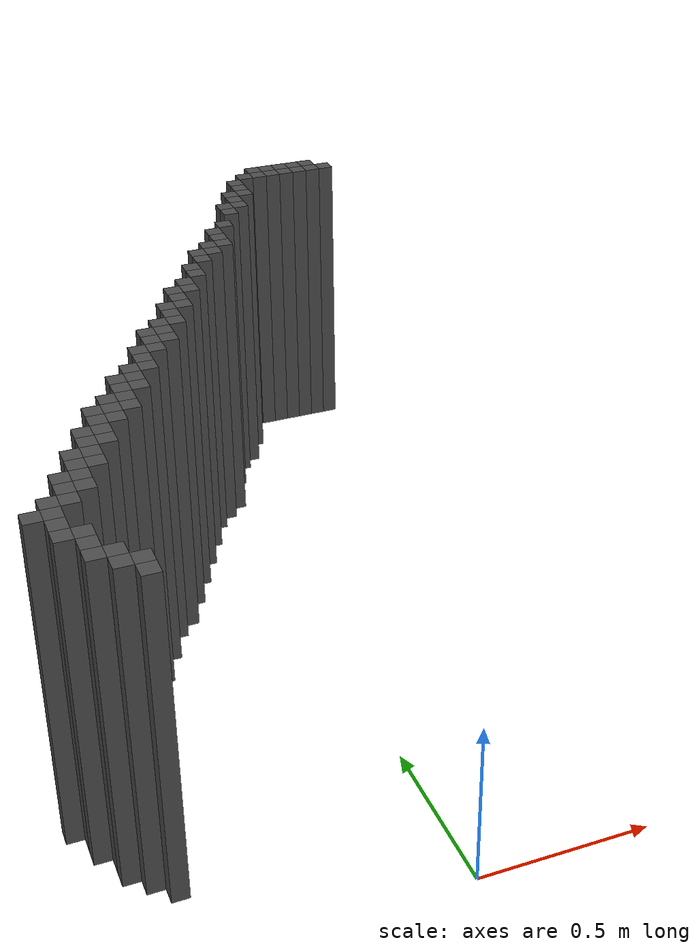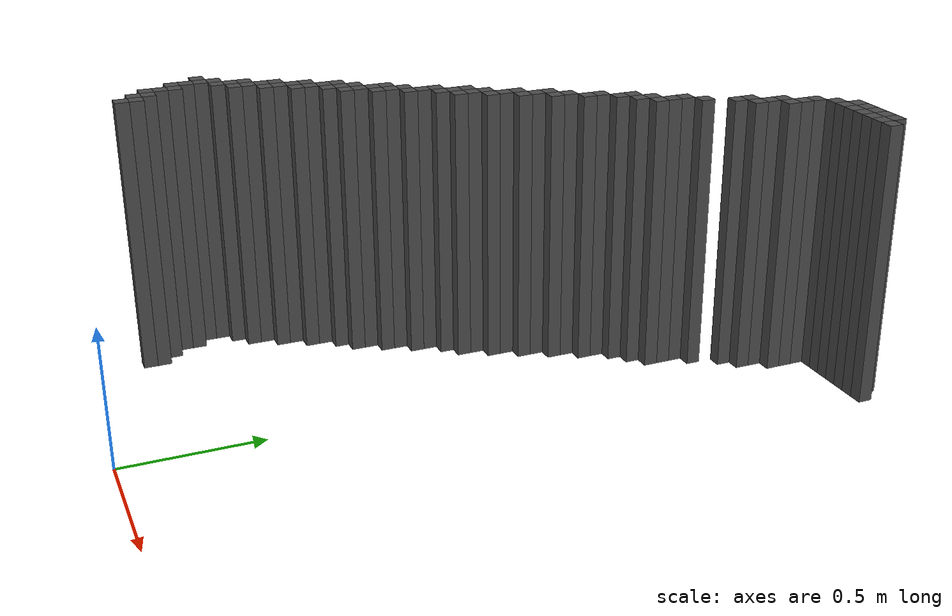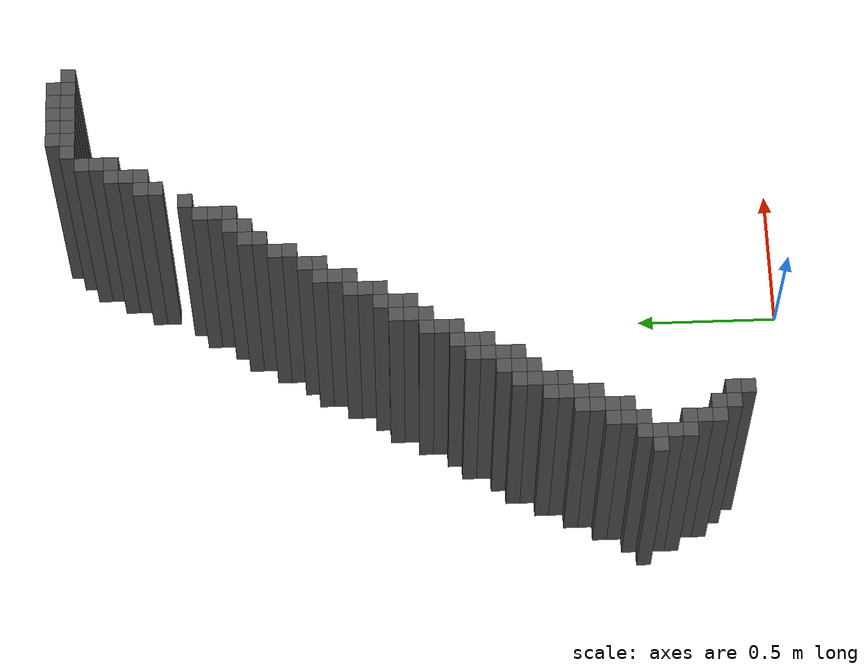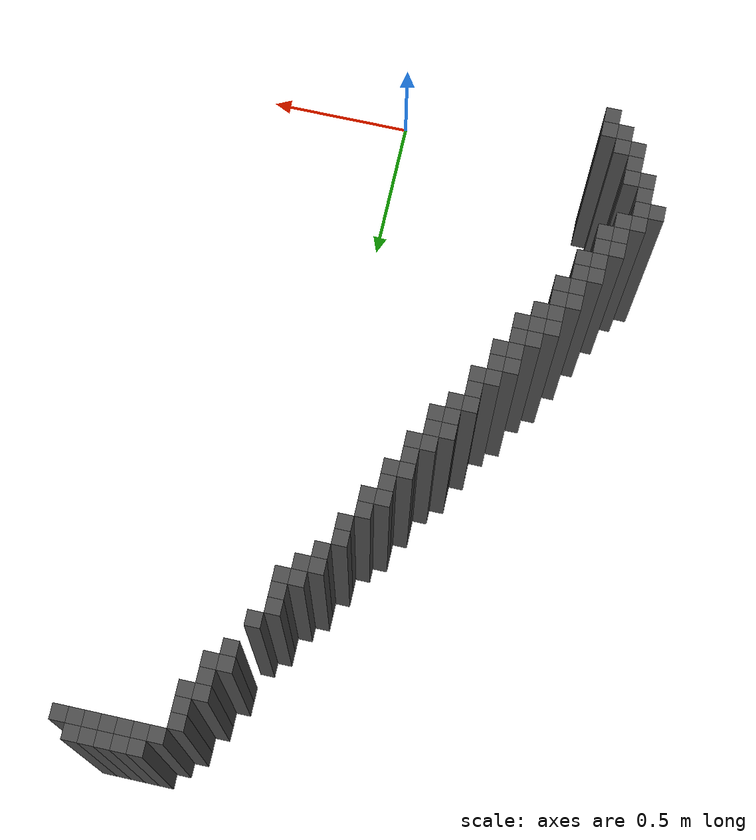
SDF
<sdf version="1.9">
 <world name="house_cleaner">
  <model name="wall_16_29">
   <static>true</static>
   <pose>0.2800 2.5400 0.5 0 0 0</pose>
   <link name="wall_link">
    <collision name="collision"><geometry><box><size>0.05 0.05 1.0</size></box></geometry></collision>
    <visual name="visual">
     <geometry><box><size>0.05 0.05 1.0</size></box></geometry>
     <material><ambient>0.3 0.3 0.3 1</ambient><diffuse>0.3 0.3 0.3 1</diffuse></material>
    </visual>
   </link>
  </model>
  <model name="wall_16_30">
   <static>true</static>
   <pose>0.3300 2.5400 0.5 0 0 0</pose>
   <link name="wall_link">
    <collision name="collision"><geometry><box><size>0.05 0.05 1.0</size></box></geometry></collision>
    <visual name="visual">
     <geometry><box><size>0.05 0.05 1.0</size></box></geometry>
     <material><ambient>0.3 0.3 0.3 1</ambient><diffuse>0.3 0.3 0.3 1</diffuse></material>
    </visual>
   </link>
  </model>
  <model name="wall_16_31">
   <static>true</static>
   <pose>0.3800 2.5400 0.5 0 0 0</pose>
   <link name="wall_link">
    <collision name="collision"><geometry><box><size>0.05 0.05 1.0</size></box></geometry></collision>
    <visual name="visual">
     <geometry><box><size>0.05 0.05 1.0</size></box></geometry>
     <material><ambient>0.3 0.3 0.3 1</ambient><diffuse>0.3 0.3 0.3 1</diffuse></material>
    </visual>
   </link>
  </model>
  <model name="wall_16_32">
   <static>true</static>
   <pose>0.4300 2.5400 0.5 0 0 0</pose>
   <link name="wall_link">
    <collision name="collision"><geometry><box><size>0.05 0.05 1.0</size></box></geometry></collision>
    <visual name="visual">
     <geometry><box><size>0.05 0.05 1.0</size></box></geometry>
     <material><ambient>0.3 0.3 0.3 1</ambient><diffuse>0.3 0.3 0.3 1</diffuse></material>
    </visual>
   </link>
  </model>
  <model name="wall_16_33">
   <static>true</static>
   <pose>0.4800 2.5400 0.5 0 0 0</pose>
   <link name="wall_link">
    <collision name="collision"><geometry><box><size>0.05 0.05 1.0</size></box></geometry></collision>
    <visual name="visual">
     <geometry><box><size>0.05 0.05 1.0</size></box></geometry>
     <material><ambient>0.3 0.3 0.3 1</ambient><diffuse>0.3 0.3 0.3 1</diffuse></material>
    </visual>
   </link>
  </model>
  <model name="wall_17_28">
   <static>true</static>
   <pose>0.2300 2.4900 0.5 0 0 0</pose>
   <link name="wall_link">
    <collision name="collision"><geometry><box><size>0.05 0.05 1.0</size></box></geometry></collision>
    <visual name="visual">
     <geometry><box><size>0.05 0.05 1.0</size></box></geometry>
     <material><ambient>0.3 0.3 0.3 1</ambient><diffuse>0.3 0.3 0.3 1</diffuse></material>
    </visual>
   </link>
  </model>
  <model name="wall_17_29">
   <static>true</static>
   <pose>0.2800 2.4900 0.5 0 0 0</pose>
   <link name="wall_link">
    <collision name="collision"><geometry><box><size>0.05 0.05 1.0</size></box></geometry></collision>
    <visual name="visual">
     <geometry><box><size>0.05 0.05 1.0</size></box></geometry>
     <material><ambient>0.3 0.3 0.3 1</ambient><diffuse>0.3 0.3 0.3 1</diffuse></material>
    </visual>
   </link>
  </model>
  <model name="wall_17_30">
   <static>true</static>
   <pose>0.3300 2.4900 0.5 0 0 0</pose>
   <link name="wall_link">
    <collision name="collision"><geometry><box><size>0.05 0.05 1.0</size></box></geometry></collision>
    <visual name="visual">
     <geometry><box><size>0.05 0.05 1.0</size></box></geometry>
     <material><ambient>0.3 0.3 0.3 1</ambient><diffuse>0.3 0.3 0.3 1</diffuse></material>
    </visual>
   </link>
  </model>
  <model name="wall_17_31">
   <static>true</static>
   <pose>0.3800 2.4900 0.5 0 0 0</pose>
   <link name="wall_link">
    <collision name="collision"><geometry><box><size>0.05 0.05 1.0</size></box></geometry></collision>
    <visual name="visual">
     <geometry><box><size>0.05 0.05 1.0</size></box></geometry>
     <material><ambient>0.3 0.3 0.3 1</ambient><diffuse>0.3 0.3 0.3 1</diffuse></material>
    </visual>
   </link>
  </model>
  <model name="wall_17_32">
   <static>true</static>
   <pose>0.4300 2.4900 0.5 0 0 0</pose>
   <link name="wall_link">
    <collision name="collision"><geometry><box><size>0.05 0.05 1.0</size></box></geometry></collision>
    <visual name="visual">
     <geometry><box><size>0.05 0.05 1.0</size></box></geometry>
     <material><ambient>0.3 0.3 0.3 1</ambient><diffuse>0.3 0.3 0.3 1</diffuse></material>
    </visual>
   </link>
  </model>
  <model name="wall_17_33">
   <static>true</static>
   <pose>0.4800 2.4900 0.5 0 0 0</pose>
   <link name="wall_link">
    <collision name="collision"><geometry><box><size>0.05 0.05 1.0</size></box></geometry></collision>
    <visual name="visual">
     <geometry><box><size>0.05 0.05 1.0</size></box></geometry>
     <material><ambient>0.3 0.3 0.3 1</ambient><diffuse>0.3 0.3 0.3 1</diffuse></material>
    </visual>
   </link>
  </model>
  <model name="wall_17_34">
   <static>true</static>
   <pose>0.5300 2.4900 0.5 0 0 0</pose>
   <link name="wall_link">
    <collision name="collision"><geometry><box><size>0.05 0.05 1.0</size></box></geometry></collision>
    <visual name="visual">
     <geometry><box><size>0.05 0.05 1.0</size></box></geometry>
     <material><ambient>0.3 0.3 0.3 1</ambient><diffuse>0.3 0.3 0.3 1</diffuse></material>
    </visual>
   </link>
  </model>
  <model name="wall_18_27">
   <static>true</static>
   <pose>0.1800 2.4400 0.5 0 0 0</pose>
   <link name="wall_link">
    <collision name="collision"><geometry><box><size>0.05 0.05 1.0</size></box></geometry></collision>
    <visual name="visual">
     <geometry><box><size>0.05 0.05 1.0</size></box></geometry>
     <material><ambient>0.3 0.3 0.3 1</ambient><diffuse>0.3 0.3 0.3 1</diffuse></material>
    </visual>
   </link>
  </model>
  <model name="wall_19_27">
   <static>true</static>
   <pose>0.1800 2.3900 0.5 0 0 0</pose>
   <link name="wall_link">
    <collision name="collision"><geometry><box><size>0.05 0.05 1.0</size></box></geometry></collision>
    <visual name="visual">
     <geometry><box><size>0.05 0.05 1.0</size></box></geometry>
     <material><ambient>0.3 0.3 0.3 1</ambient><diffuse>0.3 0.3 0.3 1</diffuse></material>
    </visual>
   </link>
  </model>
  <model name="wall_20_26">
   <static>true</static>
   <pose>0.1300 2.3400 0.5 0 0 0</pose>
   <link name="wall_link">
    <collision name="collision"><geometry><box><size>0.05 0.05 1.0</size></box></geometry></collision>
    <visual name="visual">
     <geometry><box><size>0.05 0.05 1.0</size></box></geometry>
     <material><ambient>0.3 0.3 0.3 1</ambient><diffuse>0.3 0.3 0.3 1</diffuse></material>
    </visual>
   </link>
  </model>
  <model name="wall_20_27">
   <static>true</static>
   <pose>0.1800 2.3400 0.5 0 0 0</pose>
   <link name="wall_link">
    <collision name="collision"><geometry><box><size>0.05 0.05 1.0</size></box></geometry></collision>
    <visual name="visual">
     <geometry><box><size>0.05 0.05 1.0</size></box></geometry>
     <material><ambient>0.3 0.3 0.3 1</ambient><diffuse>0.3 0.3 0.3 1</diffuse></material>
    </visual>
   </link>
  </model>
  <model name="wall_21_26">
   <static>true</static>
   <pose>0.1300 2.2900 0.5 0 0 0</pose>
   <link name="wall_link">
    <collision name="collision"><geometry><box><size>0.05 0.05 1.0</size></box></geometry></collision>
    <visual name="visual">
     <geometry><box><size>0.05 0.05 1.0</size></box></geometry>
     <material><ambient>0.3 0.3 0.3 1</ambient><diffuse>0.3 0.3 0.3 1</diffuse></material>
    </visual>
   </link>
  </model>
  <model name="wall_22_25">
   <static>true</static>
   <pose>0.0800 2.2400 0.5 0 0 0</pose>
   <link name="wall_link">
    <collision name="collision"><geometry><box><size>0.05 0.05 1.0</size></box></geometry></collision>
    <visual name="visual">
     <geometry><box><size>0.05 0.05 1.0</size></box></geometry>
     <material><ambient>0.3 0.3 0.3 1</ambient><diffuse>0.3 0.3 0.3 1</diffuse></material>
    </visual>
   </link>
  </model>
  <model name="wall_22_26">
   <static>true</static>
   <pose>0.1300 2.2400 0.5 0 0 0</pose>
   <link name="wall_link">
    <collision name="collision"><geometry><box><size>0.05 0.05 1.0</size></box></geometry></collision>
    <visual name="visual">
     <geometry><box><size>0.05 0.05 1.0</size></box></geometry>
     <material><ambient>0.3 0.3 0.3 1</ambient><diffuse>0.3 0.3 0.3 1</diffuse></material>
    </visual>
   </link>
  </model>
  <model name="wall_23_25">
   <static>true</static>
   <pose>0.0800 2.1900 0.5 0 0 0</pose>
   <link name="wall_link">
    <collision name="collision"><geometry><box><size>0.05 0.05 1.0</size></box></geometry></collision>
    <visual name="visual">
     <geometry><box><size>0.05 0.05 1.0</size></box></geometry>
     <material><ambient>0.3 0.3 0.3 1</ambient><diffuse>0.3 0.3 0.3 1</diffuse></material>
    </visual>
   </link>
  </model>
  <model name="wall_25_24">
   <static>true</static>
   <pose>0.0300 2.0900 0.5 0 0 0</pose>
   <link name="wall_link">
    <collision name="collision"><geometry><box><size>0.05 0.05 1.0</size></box></geometry></collision>
    <visual name="visual">
     <geometry><box><size>0.05 0.05 1.0</size></box></geometry>
     <material><ambient>0.3 0.3 0.3 1</ambient><diffuse>0.3 0.3 0.3 1</diffuse></material>
    </visual>
   </link>
  </model>
  <model name="wall_26_23">
   <static>true</static>
   <pose>-0.0200 2.0400 0.5 0 0 0</pose>
   <link name="wall_link">
    <collision name="collision"><geometry><box><size>0.05 0.05 1.0</size></box></geometry></collision>
    <visual name="visual">
     <geometry><box><size>0.05 0.05 1.0</size></box></geometry>
     <material><ambient>0.3 0.3 0.3 1</ambient><diffuse>0.3 0.3 0.3 1</diffuse></material>
    </visual>
   </link>
  </model>
  <model name="wall_27_23">
   <static>true</static>
   <pose>-0.0200 1.9900 0.5 0 0 0</pose>
   <link name="wall_link">
    <collision name="collision"><geometry><box><size>0.05 0.05 1.0</size></box></geometry></collision>
    <visual name="visual">
     <geometry><box><size>0.05 0.05 1.0</size></box></geometry>
     <material><ambient>0.3 0.3 0.3 1</ambient><diffuse>0.3 0.3 0.3 1</diffuse></material>
    </visual>
   </link>
  </model>
  <model name="wall_28_22">
   <static>true</static>
   <pose>-0.0700 1.9400 0.5 0 0 0</pose>
   <link name="wall_link">
    <collision name="collision"><geometry><box><size>0.05 0.05 1.0</size></box></geometry></collision>
    <visual name="visual">
     <geometry><box><size>0.05 0.05 1.0</size></box></geometry>
     <material><ambient>0.3 0.3 0.3 1</ambient><diffuse>0.3 0.3 0.3 1</diffuse></material>
    </visual>
   </link>
  </model>
  <model name="wall_28_23">
   <static>true</static>
   <pose>-0.0200 1.9400 0.5 0 0 0</pose>
   <link name="wall_link">
    <collision name="collision"><geometry><box><size>0.05 0.05 1.0</size></box></geometry></collision>
    <visual name="visual">
     <geometry><box><size>0.05 0.05 1.0</size></box></geometry>
     <material><ambient>0.3 0.3 0.3 1</ambient><diffuse>0.3 0.3 0.3 1</diffuse></material>
    </visual>
   </link>
  </model>
  <model name="wall_29_21">
   <static>true</static>
   <pose>-0.1200 1.8900 0.5 0 0 0</pose>
   <link name="wall_link">
    <collision name="collision"><geometry><box><size>0.05 0.05 1.0</size></box></geometry></collision>
    <visual name="visual">
     <geometry><box><size>0.05 0.05 1.0</size></box></geometry>
     <material><ambient>0.3 0.3 0.3 1</ambient><diffuse>0.3 0.3 0.3 1</diffuse></material>
    </visual>
   </link>
  </model>
  <model name="wall_29_22">
   <static>true</static>
   <pose>-0.0700 1.8900 0.5 0 0 0</pose>
   <link name="wall_link">
    <collision name="collision"><geometry><box><size>0.05 0.05 1.0</size></box></geometry></collision>
    <visual name="visual">
     <geometry><box><size>0.05 0.05 1.0</size></box></geometry>
     <material><ambient>0.3 0.3 0.3 1</ambient><diffuse>0.3 0.3 0.3 1</diffuse></material>
    </visual>
   </link>
  </model>
  <model name="wall_30_21">
   <static>true</static>
   <pose>-0.1200 1.8400 0.5 0 0 0</pose>
   <link name="wall_link">
    <collision name="collision"><geometry><box><size>0.05 0.05 1.0</size></box></geometry></collision>
    <visual name="visual">
     <geometry><box><size>0.05 0.05 1.0</size></box></geometry>
     <material><ambient>0.3 0.3 0.3 1</ambient><diffuse>0.3 0.3 0.3 1</diffuse></material>
    </visual>
   </link>
  </model>
  <model name="wall_31_20">
   <static>true</static>
   <pose>-0.1700 1.7900 0.5 0 0 0</pose>
   <link name="wall_link">
    <collision name="collision"><geometry><box><size>0.05 0.05 1.0</size></box></geometry></collision>
    <visual name="visual">
     <geometry><box><size>0.05 0.05 1.0</size></box></geometry>
     <material><ambient>0.3 0.3 0.3 1</ambient><diffuse>0.3 0.3 0.3 1</diffuse></material>
    </visual>
   </link>
  </model>
  <model name="wall_32_20">
   <static>true</static>
   <pose>-0.1700 1.7400 0.5 0 0 0</pose>
   <link name="wall_link">
    <collision name="collision"><geometry><box><size>0.05 0.05 1.0</size></box></geometry></collision>
    <visual name="visual">
     <geometry><box><size>0.05 0.05 1.0</size></box></geometry>
     <material><ambient>0.3 0.3 0.3 1</ambient><diffuse>0.3 0.3 0.3 1</diffuse></material>
    </visual>
   </link>
  </model>
  <model name="wall_33_19">
   <static>true</static>
   <pose>-0.2200 1.6900 0.5 0 0 0</pose>
   <link name="wall_link">
    <collision name="collision"><geometry><box><size>0.05 0.05 1.0</size></box></geometry></collision>
    <visual name="visual">
     <geometry><box><size>0.05 0.05 1.0</size></box></geometry>
     <material><ambient>0.3 0.3 0.3 1</ambient><diffuse>0.3 0.3 0.3 1</diffuse></material>
    </visual>
   </link>
  </model>
  <model name="wall_34_18">
   <static>true</static>
   <pose>-0.2700 1.6400 0.5 0 0 0</pose>
   <link name="wall_link">
    <collision name="collision"><geometry><box><size>0.05 0.05 1.0</size></box></geometry></collision>
    <visual name="visual">
     <geometry><box><size>0.05 0.05 1.0</size></box></geometry>
     <material><ambient>0.3 0.3 0.3 1</ambient><diffuse>0.3 0.3 0.3 1</diffuse></material>
    </visual>
   </link>
  </model>
  <model name="wall_34_19">
   <static>true</static>
   <pose>-0.2200 1.6400 0.5 0 0 0</pose>
   <link name="wall_link">
    <collision name="collision"><geometry><box><size>0.05 0.05 1.0</size></box></geometry></collision>
    <visual name="visual">
     <geometry><box><size>0.05 0.05 1.0</size></box></geometry>
     <material><ambient>0.3 0.3 0.3 1</ambient><diffuse>0.3 0.3 0.3 1</diffuse></material>
    </visual>
   </link>
  </model>
  <model name="wall_35_18">
   <static>true</static>
   <pose>-0.2700 1.5900 0.5 0 0 0</pose>
   <link name="wall_link">
    <collision name="collision"><geometry><box><size>0.05 0.05 1.0</size></box></geometry></collision>
    <visual name="visual">
     <geometry><box><size>0.05 0.05 1.0</size></box></geometry>
     <material><ambient>0.3 0.3 0.3 1</ambient><diffuse>0.3 0.3 0.3 1</diffuse></material>
    </visual>
   </link>
  </model>
  <model name="wall_36_17">
   <static>true</static>
   <pose>-0.3200 1.5400 0.5 0 0 0</pose>
   <link name="wall_link">
    <collision name="collision"><geometry><box><size>0.05 0.05 1.0</size></box></geometry></collision>
    <visual name="visual">
     <geometry><box><size>0.05 0.05 1.0</size></box></geometry>
     <material><ambient>0.3 0.3 0.3 1</ambient><diffuse>0.3 0.3 0.3 1</diffuse></material>
    </visual>
   </link>
  </model>
  <model name="wall_36_18">
   <static>true</static>
   <pose>-0.2700 1.5400 0.5 0 0 0</pose>
   <link name="wall_link">
    <collision name="collision"><geometry><box><size>0.05 0.05 1.0</size></box></geometry></collision>
    <visual name="visual">
     <geometry><box><size>0.05 0.05 1.0</size></box></geometry>
     <material><ambient>0.3 0.3 0.3 1</ambient><diffuse>0.3 0.3 0.3 1</diffuse></material>
    </visual>
   </link>
  </model>
  <model name="wall_37_17">
   <static>true</static>
   <pose>-0.3200 1.4900 0.5 0 0 0</pose>
   <link name="wall_link">
    <collision name="collision"><geometry><box><size>0.05 0.05 1.0</size></box></geometry></collision>
    <visual name="visual">
     <geometry><box><size>0.05 0.05 1.0</size></box></geometry>
     <material><ambient>0.3 0.3 0.3 1</ambient><diffuse>0.3 0.3 0.3 1</diffuse></material>
    </visual>
   </link>
  </model>
  <model name="wall_38_16">
   <static>true</static>
   <pose>-0.3700 1.4400 0.5 0 0 0</pose>
   <link name="wall_link">
    <collision name="collision"><geometry><box><size>0.05 0.05 1.0</size></box></geometry></collision>
    <visual name="visual">
     <geometry><box><size>0.05 0.05 1.0</size></box></geometry>
     <material><ambient>0.3 0.3 0.3 1</ambient><diffuse>0.3 0.3 0.3 1</diffuse></material>
    </visual>
   </link>
  </model>
  <model name="wall_38_17">
   <static>true</static>
   <pose>-0.3200 1.4400 0.5 0 0 0</pose>
   <link name="wall_link">
    <collision name="collision"><geometry><box><size>0.05 0.05 1.0</size></box></geometry></collision>
    <visual name="visual">
     <geometry><box><size>0.05 0.05 1.0</size></box></geometry>
     <material><ambient>0.3 0.3 0.3 1</ambient><diffuse>0.3 0.3 0.3 1</diffuse></material>
    </visual>
   </link>
  </model>
  <model name="wall_39_15">
   <static>true</static>
   <pose>-0.4200 1.3900 0.5 0 0 0</pose>
   <link name="wall_link">
    <collision name="collision"><geometry><box><size>0.05 0.05 1.0</size></box></geometry></collision>
    <visual name="visual">
     <geometry><box><size>0.05 0.05 1.0</size></box></geometry>
     <material><ambient>0.3 0.3 0.3 1</ambient><diffuse>0.3 0.3 0.3 1</diffuse></material>
    </visual>
   </link>
  </model>
  <model name="wall_39_16">
   <static>true</static>
   <pose>-0.3700 1.3900 0.5 0 0 0</pose>
   <link name="wall_link">
    <collision name="collision"><geometry><box><size>0.05 0.05 1.0</size></box></geometry></collision>
    <visual name="visual">
     <geometry><box><size>0.05 0.05 1.0</size></box></geometry>
     <material><ambient>0.3 0.3 0.3 1</ambient><diffuse>0.3 0.3 0.3 1</diffuse></material>
    </visual>
   </link>
  </model>
  <model name="wall_40_15">
   <static>true</static>
   <pose>-0.4200 1.3400 0.5 0 0 0</pose>
   <link name="wall_link">
    <collision name="collision"><geometry><box><size>0.05 0.05 1.0</size></box></geometry></collision>
    <visual name="visual">
     <geometry><box><size>0.05 0.05 1.0</size></box></geometry>
     <material><ambient>0.3 0.3 0.3 1</ambient><diffuse>0.3 0.3 0.3 1</diffuse></material>
    </visual>
   </link>
  </model>
  <model name="wall_40_16">
   <static>true</static>
   <pose>-0.3700 1.3400 0.5 0 0 0</pose>
   <link name="wall_link">
    <collision name="collision"><geometry><box><size>0.05 0.05 1.0</size></box></geometry></collision>
    <visual name="visual">
     <geometry><box><size>0.05 0.05 1.0</size></box></geometry>
     <material><ambient>0.3 0.3 0.3 1</ambient><diffuse>0.3 0.3 0.3 1</diffuse></material>
    </visual>
   </link>
  </model>
  <model name="wall_41_14">
   <static>true</static>
   <pose>-0.4700 1.2900 0.5 0 0 0</pose>
   <link name="wall_link">
    <collision name="collision"><geometry><box><size>0.05 0.05 1.0</size></box></geometry></collision>
    <visual name="visual">
     <geometry><box><size>0.05 0.05 1.0</size></box></geometry>
     <material><ambient>0.3 0.3 0.3 1</ambient><diffuse>0.3 0.3 0.3 1</diffuse></material>
    </visual>
   </link>
  </model>
  <model name="wall_41_15">
   <static>true</static>
   <pose>-0.4200 1.2900 0.5 0 0 0</pose>
   <link name="wall_link">
    <collision name="collision"><geometry><box><size>0.05 0.05 1.0</size></box></geometry></collision>
    <visual name="visual">
     <geometry><box><size>0.05 0.05 1.0</size></box></geometry>
     <material><ambient>0.3 0.3 0.3 1</ambient><diffuse>0.3 0.3 0.3 1</diffuse></material>
    </visual>
   </link>
  </model>
  <model name="wall_42_14">
   <static>true</static>
   <pose>-0.4700 1.2400 0.5 0 0 0</pose>
   <link name="wall_link">
    <collision name="collision"><geometry><box><size>0.05 0.05 1.0</size></box></geometry></collision>
    <visual name="visual">
     <geometry><box><size>0.05 0.05 1.0</size></box></geometry>
     <material><ambient>0.3 0.3 0.3 1</ambient><diffuse>0.3 0.3 0.3 1</diffuse></material>
    </visual>
   </link>
  </model>
  <model name="wall_43_13">
   <static>true</static>
   <pose>-0.5200 1.1900 0.5 0 0 0</pose>
   <link name="wall_link">
    <collision name="collision"><geometry><box><size>0.05 0.05 1.0</size></box></geometry></collision>
    <visual name="visual">
     <geometry><box><size>0.05 0.05 1.0</size></box></geometry>
     <material><ambient>0.3 0.3 0.3 1</ambient><diffuse>0.3 0.3 0.3 1</diffuse></material>
    </visual>
   </link>
  </model>
  <model name="wall_43_14">
   <static>true</static>
   <pose>-0.4700 1.1900 0.5 0 0 0</pose>
   <link name="wall_link">
    <collision name="collision"><geometry><box><size>0.05 0.05 1.0</size></box></geometry></collision>
    <visual name="visual">
     <geometry><box><size>0.05 0.05 1.0</size></box></geometry>
     <material><ambient>0.3 0.3 0.3 1</ambient><diffuse>0.3 0.3 0.3 1</diffuse></material>
    </visual>
   </link>
  </model>
  <model name="wall_44_12">
   <static>true</static>
   <pose>-0.5700 1.1400 0.5 0 0 0</pose>
   <link name="wall_link">
    <collision name="collision"><geometry><box><size>0.05 0.05 1.0</size></box></geometry></collision>
    <visual name="visual">
     <geometry><box><size>0.05 0.05 1.0</size></box></geometry>
     <material><ambient>0.3 0.3 0.3 1</ambient><diffuse>0.3 0.3 0.3 1</diffuse></material>
    </visual>
   </link>
  </model>
  <model name="wall_44_13">
   <static>true</static>
   <pose>-0.5200 1.1400 0.5 0 0 0</pose>
   <link name="wall_link">
    <collision name="collision"><geometry><box><size>0.05 0.05 1.0</size></box></geometry></collision>
    <visual name="visual">
     <geometry><box><size>0.05 0.05 1.0</size></box></geometry>
     <material><ambient>0.3 0.3 0.3 1</ambient><diffuse>0.3 0.3 0.3 1</diffuse></material>
    </visual>
   </link>
  </model>
  <model name="wall_45_12">
   <static>true</static>
   <pose>-0.5700 1.0900 0.5 0 0 0</pose>
   <link name="wall_link">
    <collision name="collision"><geometry><box><size>0.05 0.05 1.0</size></box></geometry></collision>
    <visual name="visual">
     <geometry><box><size>0.05 0.05 1.0</size></box></geometry>
     <material><ambient>0.3 0.3 0.3 1</ambient><diffuse>0.3 0.3 0.3 1</diffuse></material>
    </visual>
   </link>
  </model>
  <model name="wall_45_13">
   <static>true</static>
   <pose>-0.5200 1.0900 0.5 0 0 0</pose>
   <link name="wall_link">
    <collision name="collision"><geometry><box><size>0.05 0.05 1.0</size></box></geometry></collision>
    <visual name="visual">
     <geometry><box><size>0.05 0.05 1.0</size></box></geometry>
     <material><ambient>0.3 0.3 0.3 1</ambient><diffuse>0.3 0.3 0.3 1</diffuse></material>
    </visual>
   </link>
  </model>
  <model name="wall_46_11">
   <static>true</static>
   <pose>-0.6200 1.0400 0.5 0 0 0</pose>
   <link name="wall_link">
    <collision name="collision"><geometry><box><size>0.05 0.05 1.0</size></box></geometry></collision>
    <visual name="visual">
     <geometry><box><size>0.05 0.05 1.0</size></box></geometry>
     <material><ambient>0.3 0.3 0.3 1</ambient><diffuse>0.3 0.3 0.3 1</diffuse></material>
    </visual>
   </link>
  </model>
  <model name="wall_46_12">
   <static>true</static>
   <pose>-0.5700 1.0400 0.5 0 0 0</pose>
   <link name="wall_link">
    <collision name="collision"><geometry><box><size>0.05 0.05 1.0</size></box></geometry></collision>
    <visual name="visual">
     <geometry><box><size>0.05 0.05 1.0</size></box></geometry>
     <material><ambient>0.3 0.3 0.3 1</ambient><diffuse>0.3 0.3 0.3 1</diffuse></material>
    </visual>
   </link>
  </model>
  <model name="wall_47_10">
   <static>true</static>
   <pose>-0.6700 0.9900 0.5 0 0 0</pose>
   <link name="wall_link">
    <collision name="collision"><geometry><box><size>0.05 0.05 1.0</size></box></geometry></collision>
    <visual name="visual">
     <geometry><box><size>0.05 0.05 1.0</size></box></geometry>
     <material><ambient>0.3 0.3 0.3 1</ambient><diffuse>0.3 0.3 0.3 1</diffuse></material>
    </visual>
   </link>
  </model>
  <model name="wall_47_11">
   <static>true</static>
   <pose>-0.6200 0.9900 0.5 0 0 0</pose>
   <link name="wall_link">
    <collision name="collision"><geometry><box><size>0.05 0.05 1.0</size></box></geometry></collision>
    <visual name="visual">
     <geometry><box><size>0.05 0.05 1.0</size></box></geometry>
     <material><ambient>0.3 0.3 0.3 1</ambient><diffuse>0.3 0.3 0.3 1</diffuse></material>
    </visual>
   </link>
  </model>
  <model name="wall_47_12">
   <static>true</static>
   <pose>-0.5700 0.9900 0.5 0 0 0</pose>
   <link name="wall_link">
    <collision name="collision"><geometry><box><size>0.05 0.05 1.0</size></box></geometry></collision>
    <visual name="visual">
     <geometry><box><size>0.05 0.05 1.0</size></box></geometry>
     <material><ambient>0.3 0.3 0.3 1</ambient><diffuse>0.3 0.3 0.3 1</diffuse></material>
    </visual>
   </link>
  </model>
  <model name="wall_48_10">
   <static>true</static>
   <pose>-0.6700 0.9400 0.5 0 0 0</pose>
   <link name="wall_link">
    <collision name="collision"><geometry><box><size>0.05 0.05 1.0</size></box></geometry></collision>
    <visual name="visual">
     <geometry><box><size>0.05 0.05 1.0</size></box></geometry>
     <material><ambient>0.3 0.3 0.3 1</ambient><diffuse>0.3 0.3 0.3 1</diffuse></material>
    </visual>
   </link>
  </model>
  <model name="wall_48_11">
   <static>true</static>
   <pose>-0.6200 0.9400 0.5 0 0 0</pose>
   <link name="wall_link">
    <collision name="collision"><geometry><box><size>0.05 0.05 1.0</size></box></geometry></collision>
    <visual name="visual">
     <geometry><box><size>0.05 0.05 1.0</size></box></geometry>
     <material><ambient>0.3 0.3 0.3 1</ambient><diffuse>0.3 0.3 0.3 1</diffuse></material>
    </visual>
   </link>
  </model>
  <model name="wall_49_9">
   <static>true</static>
   <pose>-0.7200 0.8900 0.5 0 0 0</pose>
   <link name="wall_link">
    <collision name="collision"><geometry><box><size>0.05 0.05 1.0</size></box></geometry></collision>
    <visual name="visual">
     <geometry><box><size>0.05 0.05 1.0</size></box></geometry>
     <material><ambient>0.3 0.3 0.3 1</ambient><diffuse>0.3 0.3 0.3 1</diffuse></material>
    </visual>
   </link>
  </model>
  <model name="wall_49_10">
   <static>true</static>
   <pose>-0.6700 0.8900 0.5 0 0 0</pose>
   <link name="wall_link">
    <collision name="collision"><geometry><box><size>0.05 0.05 1.0</size></box></geometry></collision>
    <visual name="visual">
     <geometry><box><size>0.05 0.05 1.0</size></box></geometry>
     <material><ambient>0.3 0.3 0.3 1</ambient><diffuse>0.3 0.3 0.3 1</diffuse></material>
    </visual>
   </link>
  </model>
  <model name="wall_50_9">
   <static>true</static>
   <pose>-0.7200 0.8400 0.5 0 0 0</pose>
   <link name="wall_link">
    <collision name="collision"><geometry><box><size>0.05 0.05 1.0</size></box></geometry></collision>
    <visual name="visual">
     <geometry><box><size>0.05 0.05 1.0</size></box></geometry>
     <material><ambient>0.3 0.3 0.3 1</ambient><diffuse>0.3 0.3 0.3 1</diffuse></material>
    </visual>
   </link>
  </model>
  <model name="wall_50_10">
   <static>true</static>
   <pose>-0.6700 0.8400 0.5 0 0 0</pose>
   <link name="wall_link">
    <collision name="collision"><geometry><box><size>0.05 0.05 1.0</size></box></geometry></collision>
    <visual name="visual">
     <geometry><box><size>0.05 0.05 1.0</size></box></geometry>
     <material><ambient>0.3 0.3 0.3 1</ambient><diffuse>0.3 0.3 0.3 1</diffuse></material>
    </visual>
   </link>
  </model>
  <model name="wall_51_8">
   <static>true</static>
   <pose>-0.7700 0.7900 0.5 0 0 0</pose>
   <link name="wall_link">
    <collision name="collision"><geometry><box><size>0.05 0.05 1.0</size></box></geometry></collision>
    <visual name="visual">
     <geometry><box><size>0.05 0.05 1.0</size></box></geometry>
     <material><ambient>0.3 0.3 0.3 1</ambient><diffuse>0.3 0.3 0.3 1</diffuse></material>
    </visual>
   </link>
  </model>
  <model name="wall_51_9">
   <static>true</static>
   <pose>-0.7200 0.7900 0.5 0 0 0</pose>
   <link name="wall_link">
    <collision name="collision"><geometry><box><size>0.05 0.05 1.0</size></box></geometry></collision>
    <visual name="visual">
     <geometry><box><size>0.05 0.05 1.0</size></box></geometry>
     <material><ambient>0.3 0.3 0.3 1</ambient><diffuse>0.3 0.3 0.3 1</diffuse></material>
    </visual>
   </link>
  </model>
  <model name="wall_52_8">
   <static>true</static>
   <pose>-0.7700 0.7400 0.5 0 0 0</pose>
   <link name="wall_link">
    <collision name="collision"><geometry><box><size>0.05 0.05 1.0</size></box></geometry></collision>
    <visual name="visual">
     <geometry><box><size>0.05 0.05 1.0</size></box></geometry>
     <material><ambient>0.3 0.3 0.3 1</ambient><diffuse>0.3 0.3 0.3 1</diffuse></material>
    </visual>
   </link>
  </model>
  <model name="wall_52_9">
   <static>true</static>
   <pose>-0.7200 0.7400 0.5 0 0 0</pose>
   <link name="wall_link">
    <collision name="collision"><geometry><box><size>0.05 0.05 1.0</size></box></geometry></collision>
    <visual name="visual">
     <geometry><box><size>0.05 0.05 1.0</size></box></geometry>
     <material><ambient>0.3 0.3 0.3 1</ambient><diffuse>0.3 0.3 0.3 1</diffuse></material>
    </visual>
   </link>
  </model>
  <model name="wall_53_7">
   <static>true</static>
   <pose>-0.8200 0.6900 0.5 0 0 0</pose>
   <link name="wall_link">
    <collision name="collision"><geometry><box><size>0.05 0.05 1.0</size></box></geometry></collision>
    <visual name="visual">
     <geometry><box><size>0.05 0.05 1.0</size></box></geometry>
     <material><ambient>0.3 0.3 0.3 1</ambient><diffuse>0.3 0.3 0.3 1</diffuse></material>
    </visual>
   </link>
  </model>
  <model name="wall_53_8">
   <static>true</static>
   <pose>-0.7700 0.6900 0.5 0 0 0</pose>
   <link name="wall_link">
    <collision name="collision"><geometry><box><size>0.05 0.05 1.0</size></box></geometry></collision>
    <visual name="visual">
     <geometry><box><size>0.05 0.05 1.0</size></box></geometry>
     <material><ambient>0.3 0.3 0.3 1</ambient><diffuse>0.3 0.3 0.3 1</diffuse></material>
    </visual>
   </link>
  </model>
  <model name="wall_54_7">
   <static>true</static>
   <pose>-0.8200 0.6400 0.5 0 0 0</pose>
   <link name="wall_link">
    <collision name="collision"><geometry><box><size>0.05 0.05 1.0</size></box></geometry></collision>
    <visual name="visual">
     <geometry><box><size>0.05 0.05 1.0</size></box></geometry>
     <material><ambient>0.3 0.3 0.3 1</ambient><diffuse>0.3 0.3 0.3 1</diffuse></material>
    </visual>
   </link>
  </model>
  <model name="wall_54_8">
   <static>true</static>
   <pose>-0.7700 0.6400 0.5 0 0 0</pose>
   <link name="wall_link">
    <collision name="collision"><geometry><box><size>0.05 0.05 1.0</size></box></geometry></collision>
    <visual name="visual">
     <geometry><box><size>0.05 0.05 1.0</size></box></geometry>
     <material><ambient>0.3 0.3 0.3 1</ambient><diffuse>0.3 0.3 0.3 1</diffuse></material>
    </visual>
   </link>
  </model>
  <model name="wall_55_6">
   <static>true</static>
   <pose>-0.8700 0.5900 0.5 0 0 0</pose>
   <link name="wall_link">
    <collision name="collision"><geometry><box><size>0.05 0.05 1.0</size></box></geometry></collision>
    <visual name="visual">
     <geometry><box><size>0.05 0.05 1.0</size></box></geometry>
     <material><ambient>0.3 0.3 0.3 1</ambient><diffuse>0.3 0.3 0.3 1</diffuse></material>
    </visual>
   </link>
  </model>
  <model name="wall_55_7">
   <static>true</static>
   <pose>-0.8200 0.5900 0.5 0 0 0</pose>
   <link name="wall_link">
    <collision name="collision"><geometry><box><size>0.05 0.05 1.0</size></box></geometry></collision>
    <visual name="visual">
     <geometry><box><size>0.05 0.05 1.0</size></box></geometry>
     <material><ambient>0.3 0.3 0.3 1</ambient><diffuse>0.3 0.3 0.3 1</diffuse></material>
    </visual>
   </link>
  </model>
  <model name="wall_56_5">
   <static>true</static>
   <pose>-0.9200 0.5400 0.5 0 0 0</pose>
   <link name="wall_link">
    <collision name="collision"><geometry><box><size>0.05 0.05 1.0</size></box></geometry></collision>
    <visual name="visual">
     <geometry><box><size>0.05 0.05 1.0</size></box></geometry>
     <material><ambient>0.3 0.3 0.3 1</ambient><diffuse>0.3 0.3 0.3 1</diffuse></material>
    </visual>
   </link>
  </model>
  <model name="wall_56_6">
   <static>true</static>
   <pose>-0.8700 0.5400 0.5 0 0 0</pose>
   <link name="wall_link">
    <collision name="collision"><geometry><box><size>0.05 0.05 1.0</size></box></geometry></collision>
    <visual name="visual">
     <geometry><box><size>0.05 0.05 1.0</size></box></geometry>
     <material><ambient>0.3 0.3 0.3 1</ambient><diffuse>0.3 0.3 0.3 1</diffuse></material>
    </visual>
   </link>
  </model>
  <model name="wall_57_6">
   <static>true</static>
   <pose>-0.8700 0.4900 0.5 0 0 0</pose>
   <link name="wall_link">
    <collision name="collision"><geometry><box><size>0.05 0.05 1.0</size></box></geometry></collision>
    <visual name="visual">
     <geometry><box><size>0.05 0.05 1.0</size></box></geometry>
     <material><ambient>0.3 0.3 0.3 1</ambient><diffuse>0.3 0.3 0.3 1</diffuse></material>
    </visual>
   </link>
  </model>
  <model name="wall_58_6">
   <static>true</static>
   <pose>-0.8700 0.4400 0.5 0 0 0</pose>
   <link name="wall_link">
    <collision name="collision"><geometry><box><size>0.05 0.05 1.0</size></box></geometry></collision>
    <visual name="visual">
     <geometry><box><size>0.05 0.05 1.0</size></box></geometry>
     <material><ambient>0.3 0.3 0.3 1</ambient><diffuse>0.3 0.3 0.3 1</diffuse></material>
    </visual>
   </link>
  </model>
  <model name="wall_58_7">
   <static>true</static>
   <pose>-0.8200 0.4400 0.5 0 0 0</pose>
   <link name="wall_link">
    <collision name="collision"><geometry><box><size>0.05 0.05 1.0</size></box></geometry></collision>
    <visual name="visual">
     <geometry><box><size>0.05 0.05 1.0</size></box></geometry>
     <material><ambient>0.3 0.3 0.3 1</ambient><diffuse>0.3 0.3 0.3 1</diffuse></material>
    </visual>
   </link>
  </model>
  <model name="wall_59_7">
   <static>true</static>
   <pose>-0.8200 0.3900 0.5 0 0 0</pose>
   <link name="wall_link">
    <collision name="collision"><geometry><box><size>0.05 0.05 1.0</size></box></geometry></collision>
    <visual name="visual">
     <geometry><box><size>0.05 0.05 1.0</size></box></geometry>
     <material><ambient>0.3 0.3 0.3 1</ambient><diffuse>0.3 0.3 0.3 1</diffuse></material>
    </visual>
   </link>
  </model>
  <model name="wall_60_7">
   <static>true</static>
   <pose>-0.8200 0.3400 0.5 0 0 0</pose>
   <link name="wall_link">
    <collision name="collision"><geometry><box><size>0.05 0.05 1.0</size></box></geometry></collision>
    <visual name="visual">
     <geometry><box><size>0.05 0.05 1.0</size></box></geometry>
     <material><ambient>0.3 0.3 0.3 1</ambient><diffuse>0.3 0.3 0.3 1</diffuse></material>
    </visual>
   </link>
  </model>
  <model name="wall_60_8">
   <static>true</static>
   <pose>-0.7700 0.3400 0.5 0 0 0</pose>
   <link name="wall_link">
    <collision name="collision"><geometry><box><size>0.05 0.05 1.0</size></box></geometry></collision>
    <visual name="visual">
     <geometry><box><size>0.05 0.05 1.0</size></box></geometry>
     <material><ambient>0.3 0.3 0.3 1</ambient><diffuse>0.3 0.3 0.3 1</diffuse></material>
    </visual>
   </link>
  </model>
  <model name="wall_61_8">
   <static>true</static>
   <pose>-0.7700 0.2900 0.5 0 0 0</pose>
   <link name="wall_link">
    <collision name="collision"><geometry><box><size>0.05 0.05 1.0</size></box></geometry></collision>
    <visual name="visual">
     <geometry><box><size>0.05 0.05 1.0</size></box></geometry>
     <material><ambient>0.3 0.3 0.3 1</ambient><diffuse>0.3 0.3 0.3 1</diffuse></material>
    </visual>
   </link>
  </model>
  <model name="wall_61_9">
   <static>true</static>
   <pose>-0.7200 0.2900 0.5 0 0 0</pose>
   <link name="wall_link">
    <collision name="collision"><geometry><box><size>0.05 0.05 1.0</size></box></geometry></collision>
    <visual name="visual">
     <geometry><box><size>0.05 0.05 1.0</size></box></geometry>
     <material><ambient>0.3 0.3 0.3 1</ambient><diffuse>0.3 0.3 0.3 1</diffuse></material>
    </visual>
   </link>
  </model>
  <model name="wall_62_9">
   <static>true</static>
   <pose>-0.7200 0.2400 0.5 0 0 0</pose>
   <link name="wall_link">
    <collision name="collision"><geometry><box><size>0.05 0.05 1.0</size></box></geometry></collision>
    <visual name="visual">
     <geometry><box><size>0.05 0.05 1.0</size></box></geometry>
     <material><ambient>0.3 0.3 0.3 1</ambient><diffuse>0.3 0.3 0.3 1</diffuse></material>
    </visual>
   </link>
  </model>
 </world>
</sdf>
